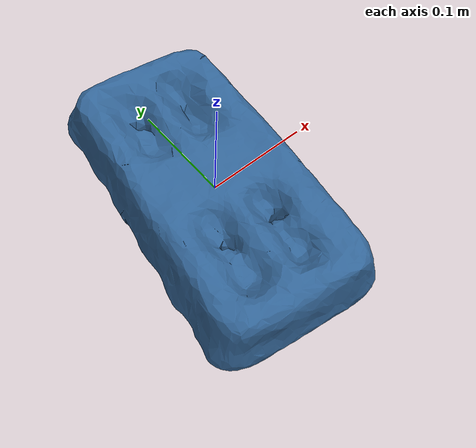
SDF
<?xml version='1.0' encoding='UTF-8'?>
<!-- This SDF was autogenerated by obj_to_drake_sdf.py -->
<sdf version="1.7">
  <model name="egg_carton">
    <link name="egg_carton">
      <inertial>
        <pose>0 0 0 0 0 0</pose>
        <mass>0.05</mass>
        <inertia>
          <ixx>0.00033045114</ixx>
          <iyy>0.00010751181</iyy>
          <izz>0.00040457808</izz>
          <ixy>-2.7076472e-05</ixy>
          <ixz>2.214521e-06</ixz>
          <iyz>1.9399355e-07</iyz>
        </inertia>
      </inertial>
      <visual name="convex_0">
        <pose>0 0 0 0 0 0</pose>
        <geometry>
          <mesh>
            <uri>egg_carton.obj</uri>
          </mesh>
        </geometry>
        <material>
          <diffuse>0.19607843137254902 0.39215686274509803 0.5882352941176471 1</diffuse>
        </material>
      </visual>
    </link>
  </model>
</sdf>
